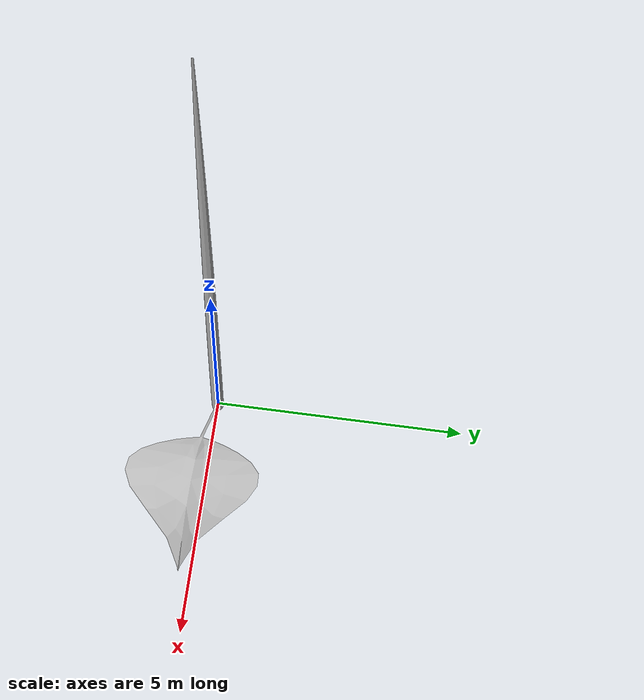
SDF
<sdf version='1.6'>
  <world name='default'>
    <include>
      <uri>model://sun</uri>
    </include>

    <include>
      <name>coffee_plant</name>
      <uri>model://coffee_plant</uri>
      <pose>0 0 0 0 0 0</pose>
    </include>

    <gui fullscreen='0'>
      <camera name='user_camera'>
        <pose frame=''>9.0 -12.0 6.0 0.0 0.3 2.2</pose>
        <view_controller>orbit</view_controller>
        <projection_type>perspective</projection_type>
      </camera>
    </gui>

  </world>
</sdf>

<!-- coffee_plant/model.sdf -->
<sdf version="1.5">
  <model name="coffee_plant">
    <pose>0 0 0 0 0 0</pose>
    <static>true</static>
    <link name="body">
      <visual name="visual">
        <geometry>
          <mesh><uri>model://coffee_plant/media/coffee_plant.dae</uri></mesh>
        </geometry>
	<material>
          <script>
            <uri>model://coffee_plant/media/scripts</uri>
            <uri>model://coffee_plant/media/textures</uri>
            <name>RepeatedLeaf/Diffuse</name>
          </script>
        </material>
      </visual>
      <collision name="collision">
        <geometry>
          <mesh><uri>model://coffee_plant/media/coffee_plant.dae</uri></mesh>
        </geometry>
      </collision>
    </link>
  </model>
</sdf>
